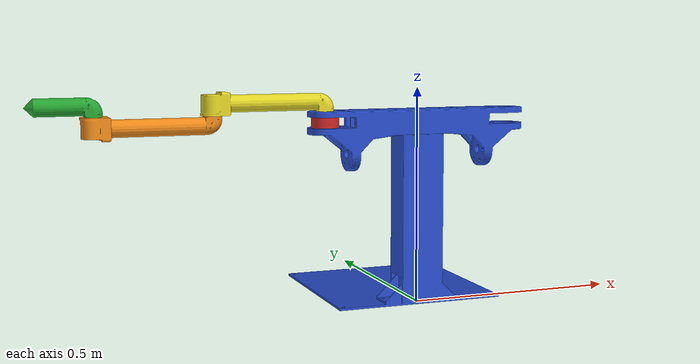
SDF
<?xml version="1.0" ?>
<sdf version='1.7'>
  <model name='dual_arm_mg_left'>
    <joint name='world_base' type='fixed'>
      <pose relative_to='__model__'>0 0 0 0 -0 0</pose>
      <parent>world</parent>
      <child>link_base</child>
    </joint>
    <link name='link_base'>
      <pose relative_to='world_base'>0 0 0 0 -0 0</pose>
      <inertial>
        <pose>-0.006602 0.039078 0.249108 0 -0 0</pose>
        <mass>3.47347</mass>
        <inertia>
          <ixx>0.0273314</ixx>
          <ixy>-0.000896094</ixy>
          <ixz>0.00410623</ixz>
          <iyy>0.0333878</iyy>
          <iyz>0.000738061</iyz>
          <izz>0.0310189</izz>
        </inertia>
      </inertial>
      <collision name='link_base_collision'>
        <pose>0 0 0 0 -0 0</pose>
        <geometry>
          <mesh>
            <scale>1 1 1</scale>
            <uri>file:///home/hung_2004/Dual_arm_CoSimulation/Dual_arm_MG_ws/src/dual_arm_mg_left/meshes/link_base.STL</uri>
          </mesh>
        </geometry>
        <surface>
          <contact>
            <ode/>
          </contact>
          <friction>
            <ode/>
          </friction>
        </surface>
      </collision>
      <collision name='link_base_fixed_joint_lump__link_01_collision_1'>
        <pose>-0.224 0 0.4465 0 -0 0</pose>
        <geometry>
          <mesh>
            <scale>1 1 1</scale>
            <uri>file:///home/hung_2004/Dual_arm_CoSimulation/Dual_arm_MG_ws/src/dual_arm_mg_left/meshes/link_01.STL</uri>
          </mesh>
        </geometry>
        <surface>
          <contact>
            <ode/>
          </contact>
          <friction>
            <ode/>
          </friction>
        </surface>
      </collision>
      <visual name='link_base_visual'>
        <pose>0 0 0 0 -0 0</pose>
        <geometry>
          <mesh>
            <scale>1 1 1</scale>
            <uri>file:///home/hung_2004/Dual_arm_CoSimulation/Dual_arm_MG_ws/src/dual_arm_mg_left/meshes/link_base.STL</uri>
          </mesh>
        </geometry>
        <material>
          <script>
            <name>Gazebo/Blue</name>
            <uri>file://media/materials/scripts/gazebo.material</uri>
          </script>
        </material>
      </visual>
      <visual name='link_base_fixed_joint_lump__link_01_visual_1'>
        <pose>-0.224 0 0.4465 0 -0 0</pose>
        <geometry>
          <mesh>
            <scale>1 1 1</scale>
            <uri>file:///home/hung_2004/Dual_arm_CoSimulation/Dual_arm_MG_ws/src/dual_arm_mg_left/meshes/link_01.STL</uri>
          </mesh>
        </geometry>
        <material>
          <script>
            <name>Gazebo/Red</name>
            <uri>file://media/materials/scripts/gazebo.material</uri>
          </script>
        </material>
      </visual>
    </link>
    <joint name='joint_11' type='revolute'>
      <pose relative_to='link_base'>-0.224 0 0.4465 0 0 -3.14159</pose>
      <parent>link_base</parent>
      <child>link_11</child>
      <axis>
        <xyz>0 0 1</xyz>
        <limit>
          <lower>-3.1416</lower>
          <upper>3.1416</upper>
          <effort>100</effort>
          <velocity>1000</velocity>
        </limit>
        <dynamics>
          <damping>0.05</damping>
          <friction>0</friction>
          <spring_reference>0</spring_reference>
          <spring_stiffness>0</spring_stiffness>
        </dynamics>
      </axis>
    </joint>
    <link name='link_11'>
      <pose relative_to='joint_11'>0 0 0 0 -0 0</pose>
      <inertial>
        <pose>0.18266 4e-05 0.022592 0 -0 0</pose>
        <mass>0.23333</mass>
        <inertia>
          <ixx>7.5902e-05</ixx>
          <ixy>4.6038e-09</ixy>
          <ixz>3.0086e-07</ixz>
          <iyy>0.00020275</iyy>
          <iyz>8.3576e-09</iyz>
          <izz>0.00021877</izz>
        </inertia>
      </inertial>
      <collision name='link_11_collision'>
        <pose>0 0 0 0 -0 0</pose>
        <geometry>
          <mesh>
            <scale>1 1 1</scale>
            <uri>file:///home/hung_2004/Dual_arm_CoSimulation/Dual_arm_MG_ws/src/dual_arm_mg_left/meshes/link_11.STL</uri>
          </mesh>
        </geometry>
        <surface>
          <contact>
            <ode/>
          </contact>
          <friction>
            <ode/>
          </friction>
        </surface>
      </collision>
      <visual name='link_11_visual'>
        <pose>0 0 0 0 -0 0</pose>
        <geometry>
          <mesh>
            <scale>1 1 1</scale>
            <uri>file:///home/hung_2004/Dual_arm_CoSimulation/Dual_arm_MG_ws/src/dual_arm_mg_left/meshes/link_11.STL</uri>
          </mesh>
        </geometry>
        <material>
          <script>
            <name>Gazebo/Yellow</name>
            <uri>file://media/materials/scripts/gazebo.material</uri>
          </script>
        </material>
      </visual>
    </link>
    <joint name='joint_21' type='revolute'>
      <pose relative_to='link_11'>0.253 0 0.005 0 -0 0</pose>
      <parent>link_11</parent>
      <child>link_21</child>
      <axis>
        <xyz>0 0 -1</xyz>
        <limit>
          <lower>-3.1416</lower>
          <upper>3.1416</upper>
          <effort>100</effort>
          <velocity>1000</velocity>
        </limit>
        <dynamics>
          <damping>0.05</damping>
          <friction>0</friction>
          <spring_reference>0</spring_reference>
          <spring_stiffness>0</spring_stiffness>
        </dynamics>
      </axis>
    </joint>
    <link name='link_21'>
      <pose relative_to='joint_21'>0 0 0 0 -0 0</pose>
      <inertial>
        <pose>0.18609 -4.8e-05 -0.022546 0 -0 0</pose>
        <mass>0.22941</mass>
        <inertia>
          <ixx>7.4854e-05</ixx>
          <ixy>-1.1043e-08</ixy>
          <ixz>-7.4492e-07</ixz>
          <iyy>0.00020059</iyy>
          <iyz>-1.9149e-08</iyz>
          <izz>0.00021668</izz>
        </inertia>
      </inertial>
      <collision name='link_21_collision'>
        <pose>0 0 0 0 -0 0</pose>
        <geometry>
          <mesh>
            <scale>1 1 1</scale>
            <uri>file:///home/hung_2004/Dual_arm_CoSimulation/Dual_arm_MG_ws/src/dual_arm_mg_left/meshes/link_21.STL</uri>
          </mesh>
        </geometry>
        <surface>
          <contact>
            <ode/>
          </contact>
          <friction>
            <ode/>
          </friction>
        </surface>
      </collision>
      <visual name='link_21_visual'>
        <pose>0 0 0 0 -0 0</pose>
        <geometry>
          <mesh>
            <scale>1 1 1</scale>
            <uri>file:///home/hung_2004/Dual_arm_CoSimulation/Dual_arm_MG_ws/src/dual_arm_mg_left/meshes/link_21.STL</uri>
          </mesh>
        </geometry>
        <material>
          <script>
            <name>Gazebo/Orange</name>
            <uri>file://media/materials/scripts/gazebo.material</uri>
          </script>
        </material>
      </visual>
    </link>
    <joint name='joint_31' type='revolute'>
      <pose relative_to='link_21'>0.253 0 -0.005 0 -0 0</pose>
      <parent>link_21</parent>
      <child>link_31</child>
      <axis>
        <xyz>0 0 1</xyz>
        <limit>
          <lower>-3.1416</lower>
          <upper>3.1416</upper>
          <effort>100</effort>
          <velocity>1000</velocity>
        </limit>
        <dynamics>
          <damping>0.05</damping>
          <friction>0</friction>
          <spring_reference>0</spring_reference>
          <spring_stiffness>0</spring_stiffness>
        </dynamics>
      </axis>
    </joint>
    <link name='link_31'>
      <pose relative_to='joint_31'>0 0 0 0 -0 0</pose>
      <inertial>
        <pose>0.051237 -0 0.022159 0 -0 0</pose>
        <mass>0.071538</mass>
        <inertia>
          <ixx>1.8609e-05</ixx>
          <ixy>-1.8853e-11</ixy>
          <ixz>-3.3532e-06</ixz>
          <iyy>3.2633e-05</iyy>
          <iyz>1.0681e-10</iyz>
          <izz>3.2135e-05</izz>
        </inertia>
      </inertial>
      <collision name='link_31_collision'>
        <pose>0 0 0 0 -0 0</pose>
        <geometry>
          <mesh>
            <scale>1 1 1</scale>
            <uri>file:///home/hung_2004/Dual_arm_CoSimulation/Dual_arm_MG_ws/src/dual_arm_mg_left/meshes/link_31.STL</uri>
          </mesh>
        </geometry>
        <surface>
          <contact>
            <ode/>
          </contact>
          <friction>
            <ode/>
          </friction>
        </surface>
      </collision>
      <visual name='link_31_visual'>
        <pose>0 0 0 0 -0 0</pose>
        <geometry>
          <mesh>
            <scale>1 1 1</scale>
            <uri>file:///home/hung_2004/Dual_arm_CoSimulation/Dual_arm_MG_ws/src/dual_arm_mg_left/meshes/link_31.STL</uri>
          </mesh>
        </geometry>
        <material>
          <script>
            <name>Gazebo/Green</name>
            <uri>file://media/materials/scripts/gazebo.material</uri>
          </script>
        </material>
      </visual>
    </link>
  </model>
</sdf>
